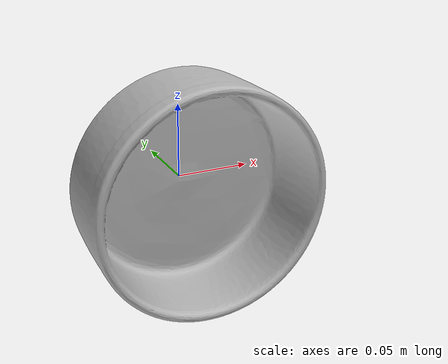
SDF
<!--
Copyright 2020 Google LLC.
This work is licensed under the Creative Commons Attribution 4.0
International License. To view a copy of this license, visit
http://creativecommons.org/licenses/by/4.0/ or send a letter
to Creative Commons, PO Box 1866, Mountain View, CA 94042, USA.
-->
<?xml version="1.0" ?>
<sdf version="1.6">
  <model name="Top_Paw_Dog_Bowl_Blue_Paw_Bone_Ceramic_25_fl_oz_total">
    <link name="link_0">
      <visual name="visual">
        <geometry>
          <mesh>
            <uri>meshes/model.obj</uri>
          </mesh>
        </geometry>
      </visual>
      <collision name="collision_0">
        <geometry>
          <mesh>
            <uri>meshes/model.obj</uri>
          </mesh>
        </geometry>
      </collision>
    </link>
  </model>
</sdf>
